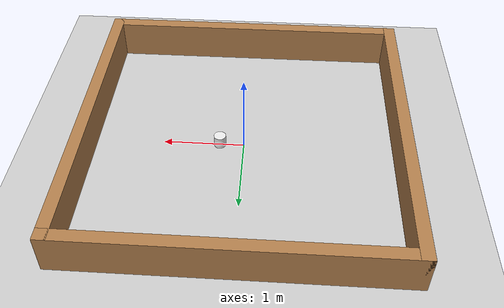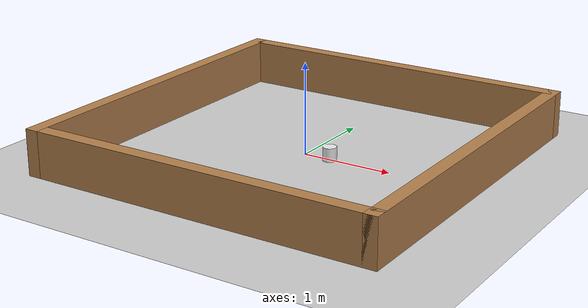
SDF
<sdf version='1.4'>
  <world name='default'>
    <!-- A global light source -->
    <include>
      <uri>model://sun</uri>
    </include>

    <!-- A ground plane -->
    <include>
      <uri>model://ground_plane</uri>
    </include>

    <physics type="ode">
      <real_time_update_rate>1000.0</real_time_update_rate>
      <max_step_size>0.001</max_step_size>
      <real_time_factor>1</real_time_factor>
      <ode>
        <solver>
          <type>quick</type>
          <iters>150</iters>
          <precon_iters>0</precon_iters>
          <sor>1.400000</sor>
          <use_dynamic_moi_rescaling>1</use_dynamic_moi_rescaling>
        </solver>
        <constraints>
          <cfm>0.00001</cfm>
          <erp>0.2</erp>
          <contact_max_correcting_vel>2000.000000</contact_max_correcting_vel>
          <contact_surface_layer>0.01000</contact_surface_layer>
        </constraints>
      </ode>
    </physics>

    <!-- Load model -->
    <include>
      <uri>model://turtlebot3_square</uri>
    </include>

    <model name='obstacle'>
      <pose frame=''>0.3 0 0.075 0 0 0</pose>
      <link name='obstacle'>
        <inertial>
          <mass>0.15</mass>
          <inertia> <!-- inertias are tricky to compute -->
            <!-- http://gazebosim.org/tutorials?tut=inertia&cat=build_robot -->
            <ixx>0.0004921875</ixx>       <!-- for a box: ixx = 0.25 * mass * (r^2) + 0.083 * mass * (l^2) -->
            <ixy>0.0</ixy>         <!-- for a box: ixy = 0 -->
            <ixz>0.0</ixz>         <!-- for a box: ixz = 0 -->
            <iyy>0.0004921875</iyy>       <!-- for a box: iyy = 0.25 * mass * (r^2) + 0.083 * mass * (l^2) -->
            <iyz>0.0</iyz>         <!-- for a box: iyz = 0 -->
            <izz>0.000421875</izz>       <!-- for a box: izz = 0.5 * mass * (r^2) -->
          </inertia>
        </inertial>

        <collision name='obstacle_1'>
          <pose>0 0 0 0 0 0</pose>
          <geometry>
            <cylinder>
              <radius>0.075</radius>
              <length>0.15</length>
            </cylinder>
          </geometry>

          <surface>
            <friction>
              <ode>
                <mu>0.01</mu>
                <mu2>0.01</mu2>
              </ode>
            </friction>
          </surface>
        </collision>

        <visual name='obstacle_1'>
          <pose>0 0 0 0 0 0</pose>
          <geometry>
            <cylinder>
              <radius>0.075</radius>
              <length>0.15</length>
            </cylinder>
          </geometry>
          <material>
            <script>
              <uri>file://media/materials/scripts/gazebo.material</uri>
              <name>Gazebo/White</name>
            </script>
          </material>
        </visual>
      </link>
    </model>

    <scene>
      <ambient>0.4 0.4 0.4 1</ambient>
      <background>0.7 0.7 0.7 1</background>
      <shadows>true</shadows>
    </scene>

    <gui fullscreen='0'>
      <camera name='user_camera'>
        <pose>0.0 0.0 17.0 0 1.5708 0</pose>
        <view_controller>orbit</view_controller>
      </camera>
    </gui>
  </world>
</sdf>

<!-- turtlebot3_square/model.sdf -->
<sdf version='1.6'>
  <model name='turtlebot3_square'>
    <pose frame=''>0 0 0 0 -0 0</pose>
    <link name='Wall_0'>
      <collision name='Wall_0_Collision'>
        <geometry>
          <box>
            <size>4 0.15 0.5</size>
          </box>
        </geometry>
        <pose frame=''>0 0 0.25 0 -0 0</pose>
      </collision>
      <visual name='Wall_0_Visual'>
        <pose frame=''>0 0 0.25 0 -0 0</pose>
        <geometry>
          <box>
            <size>4 0.15 0.5</size>
          </box>
        </geometry>
        <material>
          <script>
            <uri>file://media/materials/scripts/gazebo.material</uri>
            <name>Gazebo/Wood</name>
          </script>
          <ambient>1 1 1 1</ambient>
        </material>
      </visual>
      <pose frame=''>0 1.925 0 0 -0 0</pose>
    </link>
    <link name='Wall_2'>
      <collision name='Wall_2_Collision'>
        <geometry>
          <box>
            <size>4 0.15 0.5</size>
          </box>
        </geometry>
        <pose frame=''>0 0 0.25 0 -0 0</pose>
      </collision>
      <visual name='Wall_2_Visual'>
        <pose frame=''>0 0 0.25 0 -0 0</pose>
        <geometry>
          <box>
            <size>4 0.15 0.5</size>
          </box>
        </geometry>
        <material>
          <script>
            <uri>file://media/materials/scripts/gazebo.material</uri>
            <name>Gazebo/Wood</name>
          </script>
          <ambient>1 1 1 1</ambient>
        </material>
      </visual>
      <pose frame=''>-1.925 0 0 0 0 -1.5708</pose>
    </link>
    <link name='Wall_3'>
      <collision name='Wall_3_Collision'>
        <geometry>
          <box>
            <size>4 0.15 0.5</size>
          </box>
        </geometry>
        <pose frame=''>0 0 0.25 0 -0 0</pose>
      </collision>
      <visual name='Wall_3_Visual'>
        <pose frame=''>0 0 0.25 0 -0 0</pose>
        <geometry>
          <box>
            <size>4 0.15 0.5</size>
          </box>
        </geometry>
        <material>
          <script>
            <uri>file://media/materials/scripts/gazebo.material</uri>
            <name>Gazebo/Wood</name>
          </script>
          <ambient>1 1 1 1</ambient>
        </material>
      </visual>
      <pose frame=''>0 -1.925 0 0 -0 0</pose>
    </link>
    <link name='Wall_4'>
      <collision name='Wall_4_Collision'>
        <geometry>
          <box>
            <size>4 0.15 0.5</size>
          </box>
        </geometry>
        <pose frame=''>0 0 0.25 0 -0 0</pose>
      </collision>
      <visual name='Wall_4_Visual'>
        <pose frame=''>0 0 0.25 0 -0 0</pose>
        <geometry>
          <box>
            <size>4 0.15 0.5</size>
          </box>
        </geometry>
        <material>
          <script>
            <uri>file://media/materials/scripts/gazebo.material</uri>
            <name>Gazebo/Wood</name>
          </script>
          <ambient>1 1 1 1</ambient>
        </material>
      </visual>
      <pose frame=''>1.925 0 0 0 -0 1.5708</pose>
    </link>
    <static>1</static>
  </model>
</sdf>
